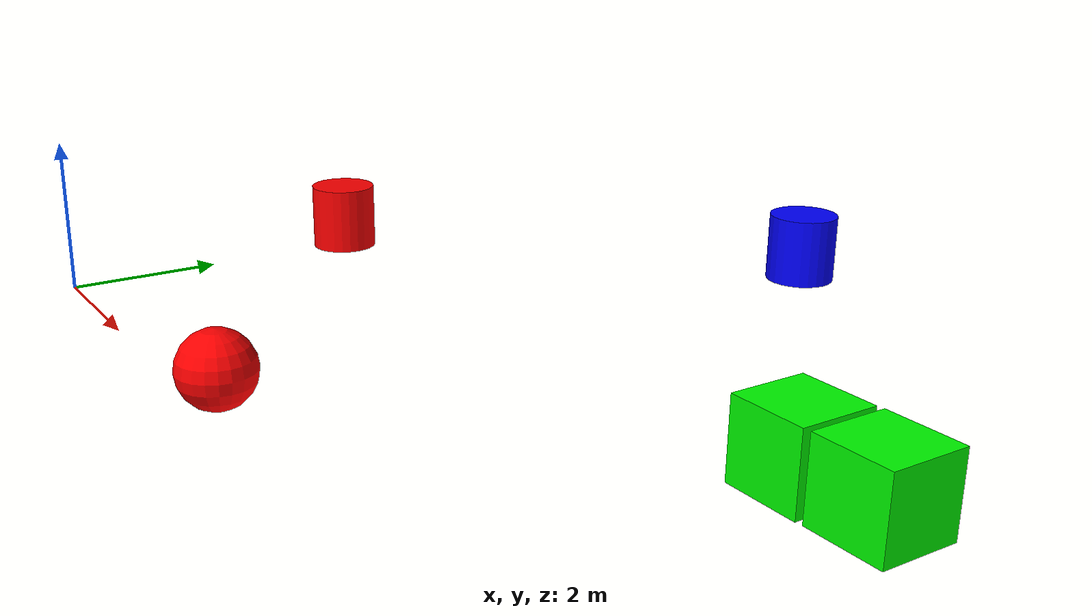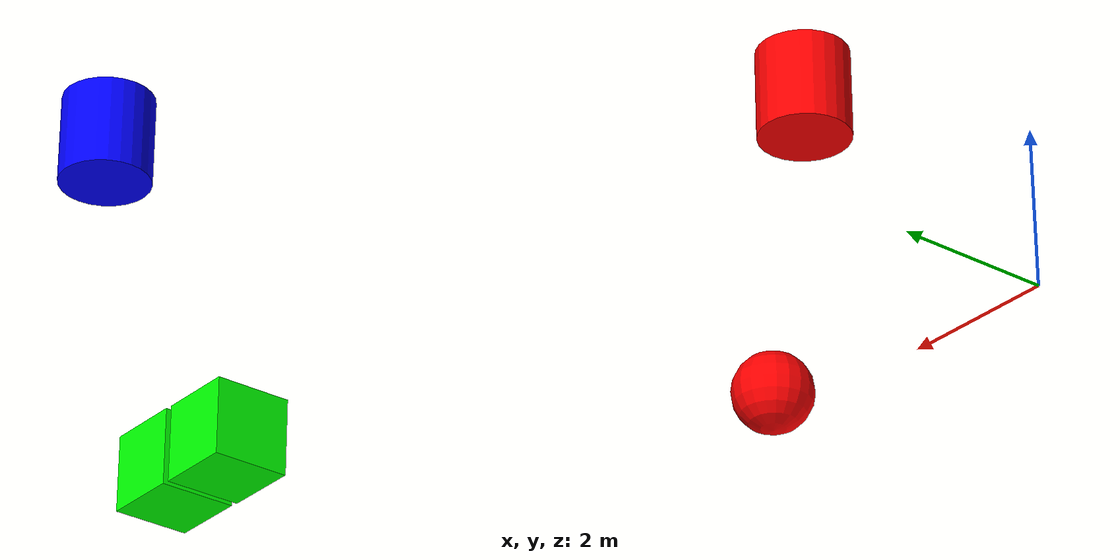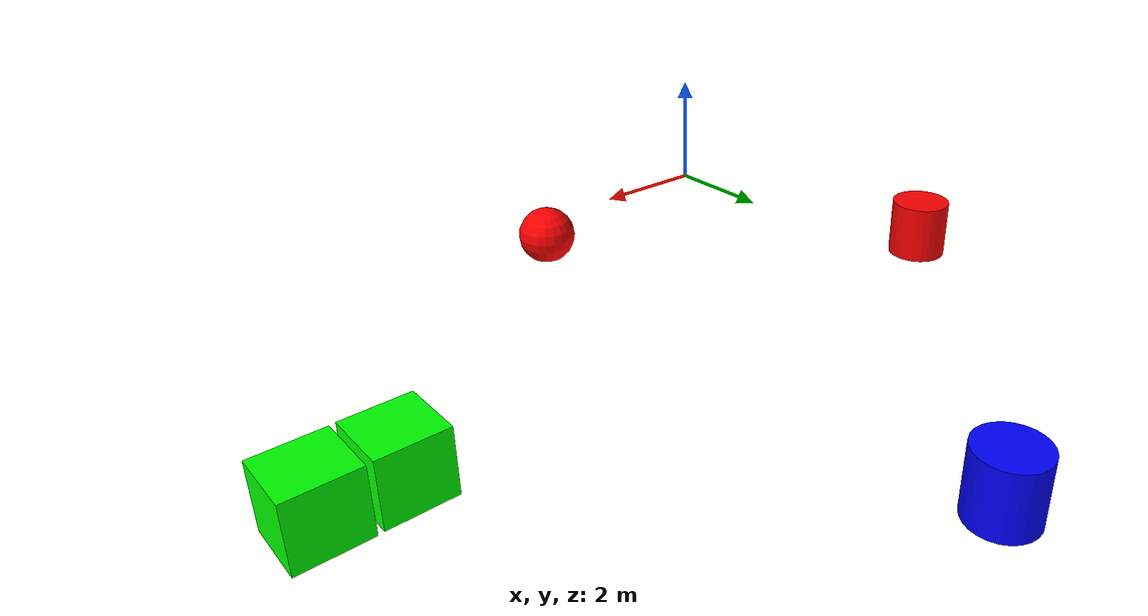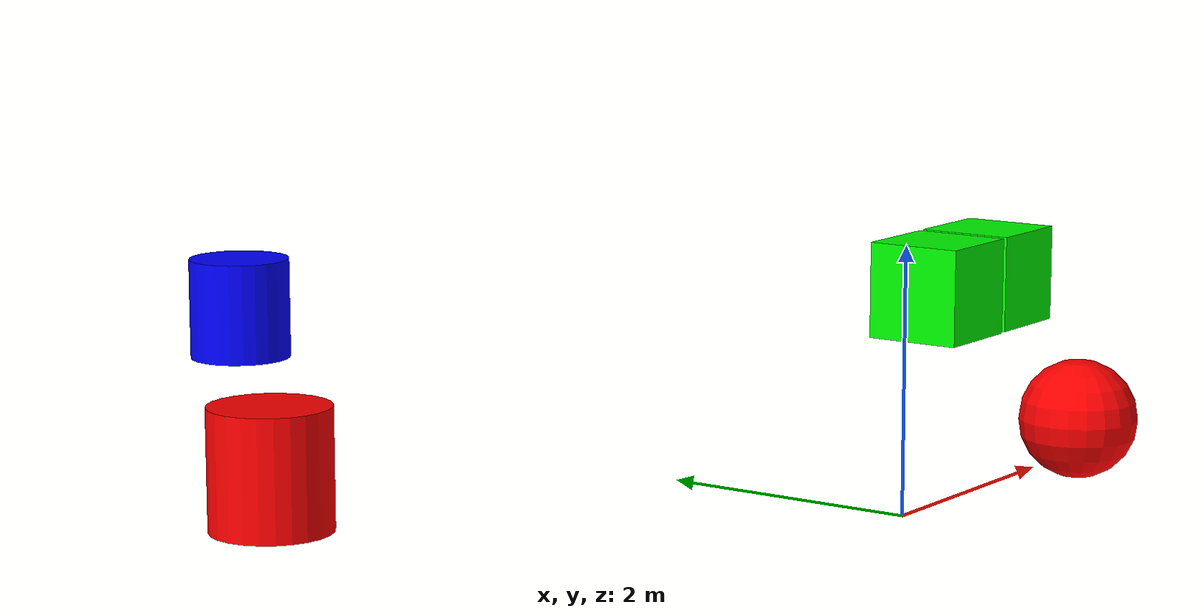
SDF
<?xml version='1.0'?>
<sdf version='1.6'>
  <model name='deployment'>
  <pose frame=''>5 5 0 0 -0 0</pose>
    <link name='link_0'>
      <inertial>
        <mass>1</mass>
        <inertia>
          <ixx>0.145833</ixx>
          <ixy>0</ixy>
          <ixz>0</ixz>
          <iyy>0.145833</iyy>
          <iyz>0</iyz>
          <izz>0.125</izz>
        </inertia>
      </inertial>
      <pose frame=''>-1.19141 4.92836 0 0 -0 0</pose>
      <visual name='visual'>
        <pose frame=''>0 0 0 0 -0 0</pose>
        <geometry>
          <cylinder>
            <radius>0.5</radius>
            <length>1</length>
          </cylinder>
        </geometry>
        <material>
          <lighting>1</lighting>
          <script>
            <uri>file://media/materials/scripts/gazebo.material</uri>
            <name>Gazebo/Grey</name>
          </script>
          <!-- Blue -->
          <ambient>0 0 1 1</ambient>
          <diffuse>0 0 1 1</diffuse>
          <specular>0 0 0 0</specular>
          <emissive>0 0 0 0</emissive>
        </material>
        <transparency>0</transparency>
        <cast_shadows>1</cast_shadows>
      </visual>
      <collision name='collision'>
        <laser_retro>0</laser_retro>
        <max_contacts>10</max_contacts>
        <pose frame=''>0 0 0 0 -0 0</pose>
        <geometry>
          <cylinder>
            <radius>0.5</radius>
            <length>1</length>
          </cylinder>
        </geometry>
        <surface>
          <friction>
            <ode>
              <mu>1</mu>
              <mu2>1</mu2>
              <fdir1>0 0 0</fdir1>
              <slip1>0</slip1>
              <slip2>0</slip2>
            </ode>
            <torsional>
              <coefficient>1</coefficient>
              <patch_radius>0</patch_radius>
              <surface_radius>0</surface_radius>
              <use_patch_radius>1</use_patch_radius>
              <ode>
                <slip>0</slip>
              </ode>
            </torsional>
          </friction>
          <bounce>
            <restitution_coefficient>0</restitution_coefficient>
            <threshold>1e+06</threshold>
          </bounce>
          <contact>
            <collide_without_contact>0</collide_without_contact>
            <collide_without_contact_bitmask>1</collide_without_contact_bitmask>
            <collide_bitmask>1</collide_bitmask>
            <ode>
              <soft_cfm>0</soft_cfm>
              <soft_erp>0.2</soft_erp>
              <kp>1e+13</kp>
              <kd>1</kd>
              <max_vel>0.01</max_vel>
              <min_depth>0</min_depth>
            </ode>
            <bullet>
              <split_impulse>1</split_impulse>
              <split_impulse_penetration_threshold>-0.01</split_impulse_penetration_threshold>
              <soft_cfm>0</soft_cfm>
              <soft_erp>0.2</soft_erp>
              <kp>1e+13</kp>
              <kd>1</kd>
            </bullet>
          </contact>
        </surface>
      </collision>
    </link>
    <link name='link_1'>
      <inertial>
        <mass>1</mass>
        <inertia>
          <ixx>0.166667</ixx>
          <ixy>0</ixy>
          <ixz>0</ixz>
          <iyy>0.166667</iyy>
          <iyz>0</iyz>
          <izz>0.166667</izz>
        </inertia>
      </inertial>
      <pose frame=''>3.87082 -0.168185 0 0 -0 0</pose>
      <visual name='visual'>
        <pose frame=''>0 0 0 0 -0 0</pose>
        <geometry>
          <box>
            <size>1 1 1</size>
          </box>
        </geometry>
        <material>
          <lighting>1</lighting>
          <script>
            <uri>file://media/materials/scripts/gazebo.material</uri>
            <name>Gazebo/Grey</name>
          </script>
          <ambient>0 1 0 1</ambient>
          <diffuse>0 1 0 1</diffuse>
          <specular>0 0 0 0</specular>
          <emissive>0 0 0 0</emissive>
        </material>
        <transparency>0</transparency>
        <cast_shadows>1</cast_shadows>
      </visual>
      <collision name='collision'>
        <laser_retro>0</laser_retro>
        <max_contacts>10</max_contacts>
        <pose frame=''>0 0 0 0 -0 0</pose>
        <geometry>
          <box>
            <size>1 1 1</size>
          </box>
        </geometry>
        <surface>
          <friction>
            <ode>
              <mu>1</mu>
              <mu2>1</mu2>
              <fdir1>0 0 0</fdir1>
              <slip1>0</slip1>
              <slip2>0</slip2>
            </ode>
            <torsional>
              <coefficient>1</coefficient>
              <patch_radius>0</patch_radius>
              <surface_radius>0</surface_radius>
              <use_patch_radius>1</use_patch_radius>
              <ode>
                <slip>0</slip>
              </ode>
            </torsional>
          </friction>
          <bounce>
            <restitution_coefficient>0</restitution_coefficient>
            <threshold>1e+06</threshold>
          </bounce>
          <contact>
            <collide_without_contact>0</collide_without_contact>
            <collide_without_contact_bitmask>1</collide_without_contact_bitmask>
            <collide_bitmask>1</collide_bitmask>
            <ode>
              <soft_cfm>0</soft_cfm>
              <soft_erp>0.2</soft_erp>
              <kp>1e+13</kp>
              <kd>1</kd>
              <max_vel>0.01</max_vel>
              <min_depth>0</min_depth>
            </ode>
            <bullet>
              <split_impulse>1</split_impulse>
              <split_impulse_penetration_threshold>-0.01</split_impulse_penetration_threshold>
              <soft_cfm>0</soft_cfm>
              <soft_erp>0.2</soft_erp>
              <kp>1e+13</kp>
              <kd>1</kd>
            </bullet>
          </contact>
        </surface>
      </collision>
    </link>
    <link name='link_2'>
      <inertial>
        <mass>1</mass>
        <inertia>
          <ixx>0.166667</ixx>
          <ixy>0</ixy>
          <ixz>0</ixz>
          <iyy>0.166667</iyy>
          <iyz>0</iyz>
          <izz>0.166667</izz>
        </inertia>
      </inertial>
      <pose frame=''>4.95585 -0.15474 0 0 -0 0</pose>
      <visual name='visual'>
        <pose frame=''>0 0 0 0 -0 0</pose>
        <geometry>
          <box>
            <size>1 1 1</size>
          </box>
        </geometry>
        <material>
          <lighting>1</lighting>
          <script>
            <uri>file://media/materials/scripts/gazebo.material</uri>
            <name>Gazebo/Grey</name>
          </script>
          <ambient>0 1 0 1</ambient>
          <diffuse>0 1 0 1</diffuse>
          <specular>0 0 0 0</specular>
          <emissive>0 0 0 0</emissive>
        </material>
        <transparency>0</transparency>
        <cast_shadows>1</cast_shadows>
      </visual>
      <collision name='collision'>
        <laser_retro>0</laser_retro>
        <max_contacts>10</max_contacts>
        <pose frame=''>0 0 0 0 -0 0</pose>
        <geometry>
          <box>
            <size>1 1 1</size>
          </box>
        </geometry>
        <surface>
          <friction>
            <ode>
              <mu>1</mu>
              <mu2>1</mu2>
              <fdir1>0 0 0</fdir1>
              <slip1>0</slip1>
              <slip2>0</slip2>
            </ode>
            <torsional>
              <coefficient>1</coefficient>
              <patch_radius>0</patch_radius>
              <surface_radius>0</surface_radius>
              <use_patch_radius>1</use_patch_radius>
              <ode>
                <slip>0</slip>
              </ode>
            </torsional>
          </friction>
          <bounce>
            <restitution_coefficient>0</restitution_coefficient>
            <threshold>1e+06</threshold>
          </bounce>
          <contact>
            <collide_without_contact>0</collide_without_contact>
            <collide_without_contact_bitmask>1</collide_without_contact_bitmask>
            <collide_bitmask>1</collide_bitmask>
            <ode>
              <soft_cfm>0</soft_cfm>
              <soft_erp>0.2</soft_erp>
              <kp>1e+13</kp>
              <kd>1</kd>
              <max_vel>0.01</max_vel>
              <min_depth>0</min_depth>
            </ode>
            <bullet>
              <split_impulse>1</split_impulse>
              <split_impulse_penetration_threshold>-0.01</split_impulse_penetration_threshold>
              <soft_cfm>0</soft_cfm>
              <soft_erp>0.2</soft_erp>
              <kp>1e+13</kp>
              <kd>1</kd>
            </bullet>
          </contact>
        </surface>
      </collision>
    </link>
    <link name='link_3'>
      <inertial>
        <mass>1</mass>
        <inertia>
          <ixx>0.1</ixx>
          <ixy>0</ixy>
          <ixz>0</ixz>
          <iyy>0.1</iyy>
          <iyz>0</iyz>
          <izz>0.1</izz>
        </inertia>
      </inertial>
      <pose frame=''>-1.14036 -4.42424 0 0 -0 0</pose>
      <visual name='visual'>
        <pose frame=''>0 0 0 0 -0 0</pose>
        <geometry>
          <sphere>
            <radius>0.5</radius>
          </sphere>
        </geometry>
        <material>
          <lighting>1</lighting>
          <script>
            <uri>file://media/materials/scripts/gazebo.material</uri>
            <name>Gazebo/Grey</name>
          </script>
          <ambient>1 0 0 1</ambient>
          <diffuse>1 0 0 1</diffuse>
          <specular>0 0 0 0</specular>
          <emissive>0 0 0 0</emissive>
        </material>
        <transparency>0</transparency>
        <cast_shadows>1</cast_shadows>
      </visual>
      <collision name='collision'>
        <laser_retro>0</laser_retro>
        <max_contacts>10</max_contacts>
        <pose frame=''>0 0 0 0 -0 0</pose>
        <geometry>
          <sphere>
            <radius>0.5</radius>
          </sphere>
        </geometry>
        <surface>
          <friction>
            <ode>
              <mu>1</mu>
              <mu2>1</mu2>
              <fdir1>0 0 0</fdir1>
              <slip1>0</slip1>
              <slip2>0</slip2>
            </ode>
            <torsional>
              <coefficient>1</coefficient>
              <patch_radius>0</patch_radius>
              <surface_radius>0</surface_radius>
              <use_patch_radius>1</use_patch_radius>
              <ode>
                <slip>0</slip>
              </ode>
            </torsional>
          </friction>
          <bounce>
            <restitution_coefficient>0</restitution_coefficient>
            <threshold>1e+06</threshold>
          </bounce>
          <contact>
            <collide_without_contact>0</collide_without_contact>
            <collide_without_contact_bitmask>1</collide_without_contact_bitmask>
            <collide_bitmask>1</collide_bitmask>
            <ode>
              <soft_cfm>0</soft_cfm>
              <soft_erp>0.2</soft_erp>
              <kp>1e+13</kp>
              <kd>1</kd>
              <max_vel>0.01</max_vel>
              <min_depth>0</min_depth>
            </ode>
            <bullet>
              <split_impulse>1</split_impulse>
              <split_impulse_penetration_threshold>-0.01</split_impulse_penetration_threshold>
              <soft_cfm>0</soft_cfm>
              <soft_erp>0.2</soft_erp>
              <kp>1e+13</kp>
              <kd>1</kd>
            </bullet>
          </contact>
        </surface>
      </collision>
    </link>
    <link name='link_4'>
      <inertial>
        <mass>1</mass>
        <inertia>
          <ixx>0.145833</ixx>
          <ixy>0</ixy>
          <ixz>0</ixz>
          <iyy>0.145833</iyy>
          <iyz>0</iyz>
          <izz>0.125</izz>
        </inertia>
      </inertial>
      <pose frame=''>-6.49489 -0.181195 0 0 -0 0</pose>
      <visual name='visual'>
        <pose frame=''>0 0 0 0 -0 0</pose>
        <geometry>
          <cylinder>
            <radius>0.5</radius>
            <length>1</length>
          </cylinder>
        </geometry>
        <material>
          <lighting>1</lighting>
          <script>
            <uri>file://media/materials/scripts/gazebo.material</uri>
            <name>Gazebo/Grey</name>
          </script>
          <ambient>1 0 0 1</ambient>
          <diffuse>1 0 0 1</diffuse>
          <specular>0 0 0 0</specular>
          <emissive>0 0 0 0</emissive>
        </material>
        <transparency>0</transparency>
        <cast_shadows>1</cast_shadows>
      </visual>
      <collision name='collision'>
        <laser_retro>0</laser_retro>
        <max_contacts>10</max_contacts>
        <pose frame=''>0 0 0 0 -0 0</pose>
        <geometry>
          <cylinder>
            <radius>0.5</radius>
            <length>1</length>
          </cylinder>
        </geometry>
        <surface>
          <friction>
            <ode>
              <mu>1</mu>
              <mu2>1</mu2>
              <fdir1>0 0 0</fdir1>
              <slip1>0</slip1>
              <slip2>0</slip2>
            </ode>
            <torsional>
              <coefficient>1</coefficient>
              <patch_radius>0</patch_radius>
              <surface_radius>0</surface_radius>
              <use_patch_radius>1</use_patch_radius>
              <ode>
                <slip>0</slip>
              </ode>
            </torsional>
          </friction>
          <bounce>
            <restitution_coefficient>0</restitution_coefficient>
            <threshold>1e+06</threshold>
          </bounce>
          <contact>
            <collide_without_contact>0</collide_without_contact>
            <collide_without_contact_bitmask>1</collide_without_contact_bitmask>
            <collide_bitmask>1</collide_bitmask>
            <ode>
              <soft_cfm>0</soft_cfm>
              <soft_erp>0.2</soft_erp>
              <kp>1e+13</kp>
              <kd>1</kd>
              <max_vel>0.01</max_vel>
              <min_depth>0</min_depth>
            </ode>
            <bullet>
              <split_impulse>1</split_impulse>
              <split_impulse_penetration_threshold>-0.01</split_impulse_penetration_threshold>
              <soft_cfm>0</soft_cfm>
              <soft_erp>0.2</soft_erp>
              <kp>1e+13</kp>
              <kd>1</kd>
            </bullet>
          </contact>
        </surface>
      </collision>
    </link>
    <static>0</static>
    <allow_auto_disable>1</allow_auto_disable>
  </model>
</sdf>
